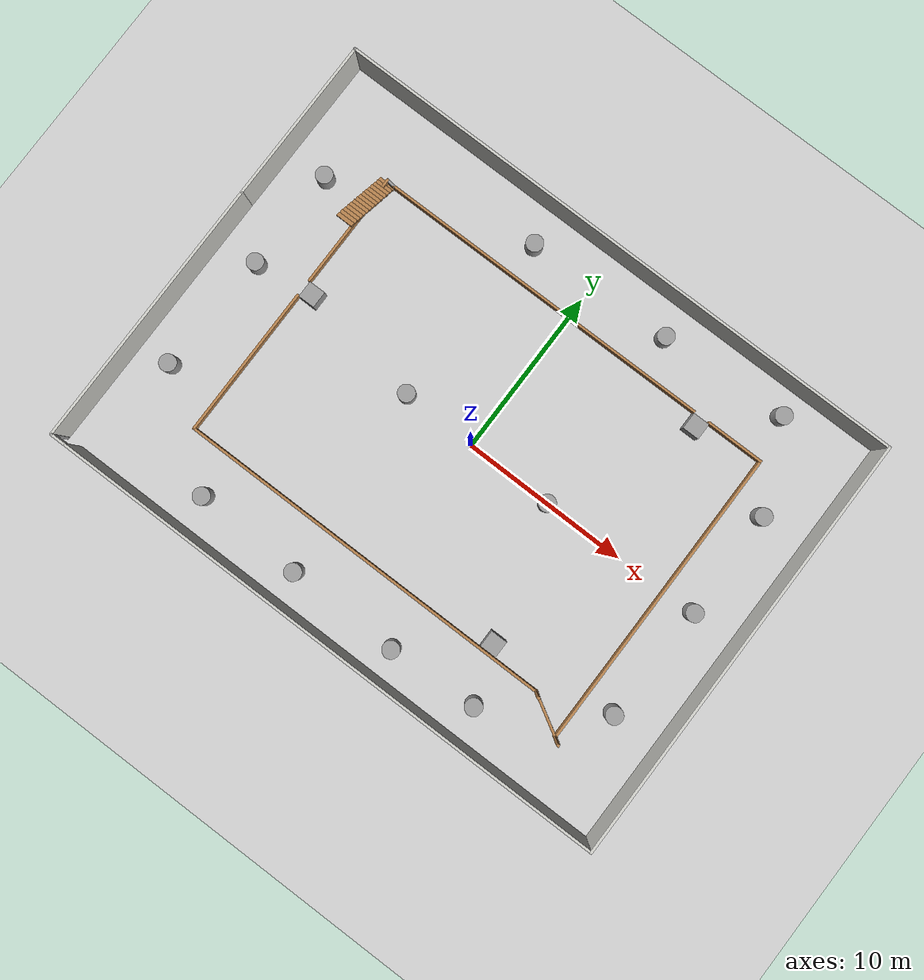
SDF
<sdf version="1.7">
 <world name="default">
  <light name="sun" type="directional">
   <pose>0 0 10 0 -0 0</pose>
   <diffuse>0.8 0.8 0.8 1</diffuse>
   <specular>0.2 0.2 0.2 1</specular>
   <attenuation>
    <range>1000</range>
    <constant>0.9</constant>
    <linear>0.01</linear>
    <quadratic>0.001</quadratic>
   </attenuation>
   <direction>-0.5 0.1 -0.9</direction>
   <spot><inner_angle>0</inner_angle><outer_angle>0</outer_angle><falloff>0</falloff></spot>
  </light>
  <model name="ground_plane">
   <static>1</static>
   <link name="link">
    <collision name="collision">
     <geometry><plane><normal>0 0 1</normal><size>100 100</size></plane></geometry>
     <surface><friction><ode><mu>100</mu><mu2>50</mu2></ode></friction></surface>
    </collision>
    <visual name="visual">
     <cast_shadows>0</cast_shadows>
     <geometry><plane><normal>0 0 1</normal><size>100 100</size></plane></geometry>
     <material>
      <script><uri>file://media/materials/scripts/gazebo.material</uri><name>Gazebo/Grey</name></script>
     </material>
    </visual>
   </link>
  </model>
  <gravity>0 0 -9.8</gravity>
  <magnetic_field>6e-06 2.3e-05 -4.2e-05</magnetic_field>
  <atmosphere type="adiabatic"/>
  <physics type="ode">
   <max_step_size>0.001</max_step_size>
   <real_time_factor>1</real_time_factor>
   <real_time_update_rate>1000</real_time_update_rate>
  </physics>
  <scene><ambient>0.4 0.4 0.4 1</ambient><background>0.7 0.7 0.7 1</background><shadows>1</shadows></scene>
  <spherical_coordinates>
   <surface_model>EARTH_WGS84</surface_model>
   <latitude_deg>0</latitude_deg>
   <longitude_deg>0</longitude_deg>
   <elevation>0</elevation>
   <heading_deg>0</heading_deg>
  </spherical_coordinates>
  <model name="w9">
   <pose>-0.090931 0.076638 0 0 -0 0</pose>
   <link name="Stairs_0">
    <visual name="Stairs_0_Visual_0">
     <pose>-12.3155 8.59462 0.083333 0 -0 0</pose>
     <geometry><box><size>1 0.233333 0.166667</size></box></geometry>
     <material>
      <script><uri>file://media/materials/scripts/gazebo.material</uri><name>Gazebo/Wood</name></script>
      <ambient>1 1 1 1</ambient>
     </material>
     <meta><layer>0</layer></meta>
    </visual>
    <collision name="Stairs_0_Collision_0">
     <geometry><box><size>1 0.233333 0.166667</size></box></geometry>
     <pose>-12.3155 8.59462 0.083333 0 -0 0</pose>
    </collision>
    <visual name="Stairs_0_Visual_1">
     <pose>-12.3155 8.36129 0.25 0 -0 0</pose>
     <geometry><box><size>1 0.233333 0.166667</size></box></geometry>
     <material>
      <script><uri>file://media/materials/scripts/gazebo.material</uri><name>Gazebo/Wood</name></script>
      <ambient>1 1 1 1</ambient>
     </material>
     <meta><layer>0</layer></meta>
    </visual>
    <collision name="Stairs_0_Collision_1">
     <geometry><box><size>1 0.233333 0.166667</size></box></geometry>
     <pose>-12.3155 8.36129 0.25 0 -0 0</pose>
    </collision>
    <visual name="Stairs_0_Visual_2">
     <pose>-12.3155 8.12796 0.416667 0 -0 0</pose>
     <geometry><box><size>1 0.233333 0.166667</size></box></geometry>
     <material>
      <script><uri>file://media/materials/scripts/gazebo.material</uri><name>Gazebo/Wood</name></script>
      <ambient>1 1 1 1</ambient>
     </material>
     <meta><layer>0</layer></meta>
    </visual>
    <collision name="Stairs_0_Collision_2">
     <geometry><box><size>1 0.233333 0.166667</size></box></geometry>
     <pose>-12.3155 8.12796 0.416667 0 -0 0</pose>
    </collision>
    <visual name="Stairs_0_Visual_3">
     <pose>-12.3155 7.89462 0.583333 0 -0 0</pose>
     <geometry><box><size>1 0.233333 0.166667</size></box></geometry>
     <material>
      <script><uri>file://media/materials/scripts/gazebo.material</uri><name>Gazebo/Wood</name></script>
      <ambient>1 1 1 1</ambient>
     </material>
     <meta><layer>0</layer></meta>
    </visual>
    <collision name="Stairs_0_Collision_3">
     <geometry><box><size>1 0.233333 0.166667</size></box></geometry>
     <pose>-12.3155 7.89462 0.583333 0 -0 0</pose>
    </collision>
    <visual name="Stairs_0_Visual_4">
     <pose>-12.3155 7.66129 0.75 0 -0 0</pose>
     <geometry><box><size>1 0.233333 0.166667</size></box></geometry>
     <material>
      <script><uri>file://media/materials/scripts/gazebo.material</uri><name>Gazebo/Wood</name></script>
      <ambient>1 1 1 1</ambient>
     </material>
     <meta><layer>0</layer></meta>
    </visual>
    <collision name="Stairs_0_Collision_4">
     <geometry><box><size>1 0.233333 0.166667</size></box></geometry>
     <pose>-12.3155 7.66129 0.75 0 -0 0</pose>
    </collision>
    <visual name="Stairs_0_Visual_5">
     <pose>-12.3155 7.42795 0.916667 0 -0 0</pose>
     <geometry><box><size>1 0.233333 0.166667</size></box></geometry>
     <material>
      <script><uri>file://media/materials/scripts/gazebo.material</uri><name>Gazebo/Wood</name></script>
      <ambient>1 1 1 1</ambient>
     </material>
     <meta><layer>0</layer></meta>
    </visual>
    <collision name="Stairs_0_Collision_5">
     <geometry><box><size>1 0.233333 0.166667</size></box></geometry>
     <pose>-12.3155 7.42795 0.916667 0 -0 0</pose>
    </collision>
    <visual name="Stairs_0_Visual_6">
     <pose>-12.3155 7.19462 1.08333 0 -0 0</pose>
     <geometry><box><size>1 0.233333 0.166667</size></box></geometry>
     <material>
      <script><uri>file://media/materials/scripts/gazebo.material</uri><name>Gazebo/Wood</name></script>
      <ambient>1 1 1 1</ambient>
     </material>
     <meta><layer>0</layer></meta>
    </visual>
    <collision name="Stairs_0_Collision_6">
     <geometry><box><size>1 0.233333 0.166667</size></box></geometry>
     <pose>-12.3155 7.19462 1.08333 0 -0 0</pose>
    </collision>
    <visual name="Stairs_0_Visual_7">
     <pose>-12.3155 6.96129 1.25 0 -0 0</pose>
     <geometry><box><size>1 0.233333 0.166667</size></box></geometry>
     <material>
      <script><uri>file://media/materials/scripts/gazebo.material</uri><name>Gazebo/Wood</name></script>
      <ambient>1 1 1 1</ambient>
     </material>
     <meta><layer>0</layer></meta>
    </visual>
    <collision name="Stairs_0_Collision_7">
     <geometry><box><size>1 0.233333 0.166667</size></box></geometry>
     <pose>-12.3155 6.96129 1.25 0 -0 0</pose>
    </collision>
    <visual name="Stairs_0_Visual_8">
     <pose>-12.3155 6.72795 1.41667 0 -0 0</pose>
     <geometry><box><size>1 0.233333 0.166667</size></box></geometry>
     <material>
      <script><uri>file://media/materials/scripts/gazebo.material</uri><name>Gazebo/Wood</name></script>
      <ambient>1 1 1 1</ambient>
     </material>
     <meta><layer>0</layer></meta>
    </visual>
    <collision name="Stairs_0_Collision_8">
     <geometry><box><size>1 0.233333 0.166667</size></box></geometry>
     <pose>-12.3155 6.72795 1.41667 0 -0 0</pose>
    </collision>
    <visual name="Stairs_0_Visual_9">
     <pose>-12.3155 6.49462 1.58333 0 -0 0</pose>
     <geometry><box><size>1 0.233333 0.166667</size></box></geometry>
     <material>
      <script><uri>file://media/materials/scripts/gazebo.material</uri><name>Gazebo/Wood</name></script>
      <ambient>1 1 1 1</ambient>
     </material>
     <meta><layer>0</layer></meta>
    </visual>
    <collision name="Stairs_0_Collision_9">
     <geometry><box><size>1 0.233333 0.166667</size></box></geometry>
     <pose>-12.3155 6.49462 1.58333 0 -0 0</pose>
    </collision>
    <visual name="Stairs_0_Visual_10">
     <pose>-12.3155 6.26129 1.75 0 -0 0</pose>
     <geometry><box><size>1 0.233333 0.166667</size></box></geometry>
     <material>
      <script><uri>file://media/materials/scripts/gazebo.material</uri><name>Gazebo/Wood</name></script>
      <ambient>1 1 1 1</ambient>
     </material>
     <meta><layer>0</layer></meta>
    </visual>
    <collision name="Stairs_0_Collision_10">
     <geometry><box><size>1 0.233333 0.166667</size></box></geometry>
     <pose>-12.3155 6.26129 1.75 0 -0 0</pose>
    </collision>
    <visual name="Stairs_0_Visual_11">
     <pose>-12.3155 6.02796 1.91667 0 -0 0</pose>
     <geometry><box><size>1 0.233333 0.166667</size></box></geometry>
     <material>
      <script><uri>file://media/materials/scripts/gazebo.material</uri><name>Gazebo/Wood</name></script>
      <ambient>1 1 1 1</ambient>
     </material>
     <meta><layer>0</layer></meta>
    </visual>
    <collision name="Stairs_0_Collision_11">
     <geometry><box><size>1 0.233333 0.166667</size></box></geometry>
     <pose>-12.3155 6.02796 1.91667 0 -0 0</pose>
    </collision>
    <visual name="Stairs_0_Visual_12">
     <pose>-12.3155 5.79462 2.08333 0 -0 0</pose>
     <geometry><box><size>1 0.233333 0.166667</size></box></geometry>
     <material>
      <script><uri>file://media/materials/scripts/gazebo.material</uri><name>Gazebo/Wood</name></script>
      <ambient>1 1 1 1</ambient>
     </material>
     <meta><layer>0</layer></meta>
    </visual>
    <collision name="Stairs_0_Collision_12">
     <geometry><box><size>1 0.233333 0.166667</size></box></geometry>
     <pose>-12.3155 5.79462 2.08333 0 -0 0</pose>
    </collision>
    <visual name="Stairs_0_Visual_13">
     <pose>-12.3155 5.56129 2.25 0 -0 0</pose>
     <geometry><box><size>1 0.233333 0.166667</size></box></geometry>
     <material>
      <script><uri>file://media/materials/scripts/gazebo.material</uri><name>Gazebo/Wood</name></script>
      <ambient>1 1 1 1</ambient>
     </material>
     <meta><layer>0</layer></meta>
    </visual>
    <collision name="Stairs_0_Collision_13">
     <geometry><box><size>1 0.233333 0.166667</size></box></geometry>
     <pose>-12.3155 5.56129 2.25 0 -0 0</pose>
    </collision>
    <visual name="Stairs_0_Visual_14">
     <pose>-12.3155 5.32796 2.41667 0 -0 0</pose>
     <geometry><box><size>1 0.233333 0.166667</size></box></geometry>
     <material>
      <script><uri>file://media/materials/scripts/gazebo.material</uri><name>Gazebo/Wood</name></script>
      <ambient>1 1 1 1</ambient>
     </material>
     <meta><layer>0</layer></meta>
    </visual>
    <collision name="Stairs_0_Collision_14">
     <geometry><box><size>1 0.233333 0.166667</size></box></geometry>
     <pose>-12.3155 5.32796 2.41667 0 -0 0</pose>
    </collision>
   </link>
   <link name="Wall_10">
    <pose>0.583152 8.68335 0 0 -0 0</pose>
    <visual name="Wall_10_Visual_0">
     <pose>-2.22989 0 0.25 0 -0 0</pose>
     <geometry><box><size>20.5402 0.15 0.5</size></box></geometry>
     <material>
      <script><uri>file://media/materials/scripts/gazebo.material</uri><name>Gazebo/Wood</name></script>
      <ambient>1 1 1 1</ambient>
     </material>
     <meta><layer>0</layer></meta>
    </visual>
    <collision name="Wall_10_Collision_0">
     <geometry><box><size>20.5402 0.15 0.5</size></box></geometry>
     <pose>-2.22989 0 0.25 0 -0 0</pose>
    </collision>
    <visual name="Wall_10_Visual_1">
     <pose>10.7201 0 0.25 0 -0 0</pose>
     <geometry><box><size>3.55979 0.15 0.5</size></box></geometry>
     <material>
      <script><uri>file://media/materials/scripts/gazebo.material</uri><name>Gazebo/Wood</name></script>
      <ambient>1 1 1 1</ambient>
     </material>
     <meta><layer>0</layer></meta>
    </visual>
    <collision name="Wall_10_Collision_1">
     <geometry><box><size>3.55979 0.15 0.5</size></box></geometry>
     <pose>10.7201 0 0.25 0 -0 0</pose>
    </collision>
   </link>
   <link name="Wall_11">
    <collision name="Wall_11_Collision">
     <geometry><box><size>18.5 0.15 0.5</size></box></geometry>
     <pose>0 0 0.25 0 -0 0</pose>
    </collision>
    <visual name="Wall_11_Visual">
     <pose>0 0 0.25 0 -0 0</pose>
     <geometry><box><size>18.5 0.15 0.5</size></box></geometry>
     <material>
      <script><uri>file://media/materials/scripts/gazebo.material</uri><name>Gazebo/Wood</name></script>
      <ambient>1 1 1 1</ambient>
     </material>
     <meta><layer>0</layer></meta>
    </visual>
    <pose>13.0082 -0.491654 0 0 -0 -1.5708</pose>
   </link>
   <link name="Wall_12">
    <collision name="Wall_12_Collision">
     <geometry><box><size>0.16 0.15 2.5</size></box></geometry>
     <pose>0 0 1.25 0 -0 0</pose>
    </collision>
    <visual name="Wall_12_Visual">
     <pose>0 0 1.25 0 -0 0</pose>
     <geometry><box><size>0.16 0.15 2.5</size></box></geometry>
     <material>
      <script><uri>file://media/materials/scripts/gazebo.material</uri><name>Gazebo/Wood</name></script>
      <ambient>1 1 1 1</ambient>
     </material>
     <meta><layer>0</layer></meta>
    </visual>
    <pose>13.0132 -9.66665 0 0 -0 0</pose>
   </link>
   <link name="Wall_13">
    <collision name="Wall_13_Collision">
     <geometry><box><size>2.75 0.15 0.5</size></box></geometry>
     <pose>0 0 0.25 0 -0 0</pose>
    </collision>
    <visual name="Wall_13_Visual">
     <pose>0 0 0.25 0 -0 0</pose>
     <geometry><box><size>2.75 0.15 0.5</size></box></geometry>
     <material>
      <script><uri>file://media/materials/scripts/gazebo.material</uri><name>Gazebo/Wood</name></script>
      <ambient>1 1 1 1</ambient>
     </material>
     <meta><layer>0</layer></meta>
    </visual>
    <pose>11.8927 -9.01665 0 0 -0 2.61787</pose>
   </link>
   <link name="Wall_14">
    <collision name="Wall_14_Collision">
     <geometry><box><size>0.16 0.15 2.5</size></box></geometry>
     <pose>0 0 1.25 0 -0 0</pose>
    </collision>
    <visual name="Wall_14_Visual">
     <pose>0 0 1.25 0 -0 0</pose>
     <geometry><box><size>0.16 0.15 2.5</size></box></geometry>
     <material>
      <script><uri>file://media/materials/scripts/gazebo.material</uri><name>Gazebo/Wood</name></script>
      <ambient>1 1 1 1</ambient>
     </material>
     <meta><layer>0</layer></meta>
    </visual>
    <pose>10.7722 -8.36665 0 0 -0 0</pose>
   </link>
   <link name="Wall_15">
    <collision name="Wall_15_Collision">
     <geometry><box><size>23.25 0.15 0.5</size></box></geometry>
     <pose>0 0 0.25 0 -0 0</pose>
    </collision>
    <visual name="Wall_15_Visual">
     <pose>0 0 0.25 0 -0 0</pose>
     <geometry><box><size>23.25 0.15 0.5</size></box></geometry>
     <material>
      <script><uri>file://media/materials/scripts/gazebo.material</uri><name>Gazebo/Wood</name></script>
      <ambient>1 1 1 1</ambient>
     </material>
     <meta><layer>0</layer></meta>
    </visual>
    <pose>-0.772848 -8.36665 0 0 -0 3.14159</pose>
   </link>
   <link name="Wall_16">
    <pose>-12.3228 0.183346 0 0 -0 1.5708</pose>
    <visual name="Wall_16_Visual_0">
     <pose>-3.99873 0 0.25 0 -0 0</pose>
     <geometry><box><size>9.25253 0.15 0.5</size></box></geometry>
     <material>
      <script><uri>file://media/materials/scripts/gazebo.material</uri><name>Gazebo/Wood</name></script>
      <ambient>1 1 1 1</ambient>
     </material>
     <meta><layer>0</layer></meta>
    </visual>
    <collision name="Wall_16_Collision_0">
     <geometry><box><size>9.25253 0.15 0.5</size></box></geometry>
     <pose>-3.99873 0 0.25 0 -0 0</pose>
    </collision>
    <visual name="Wall_16_Visual_1">
     <pose>5.07627 0 0.25 0 -0 0</pose>
     <geometry><box><size>7.09747 0.15 0.5</size></box></geometry>
     <material>
      <script><uri>file://media/materials/scripts/gazebo.material</uri><name>Gazebo/Wood</name></script>
      <ambient>1 1 1 1</ambient>
     </material>
     <meta><layer>0</layer></meta>
    </visual>
    <collision name="Wall_16_Collision_1">
     <geometry><box><size>7.09747 0.15 0.5</size></box></geometry>
     <pose>5.07627 0 0.25 0 -0 0</pose>
    </collision>
   </link>
   <link name="Wall_17">
    <collision name="Wall_17_Collision">
     <geometry><box><size>0.634254 0.15 0.5</size></box></geometry>
     <pose>0 0 0.25 0 -0 0</pose>
    </collision>
    <visual name="Wall_17_Visual">
     <pose>0 0 0.25 0 -0 0</pose>
     <geometry><box><size>0.634254 0.15 0.5</size></box></geometry>
     <material>
      <script><uri>file://media/materials/scripts/gazebo.material</uri><name>Gazebo/Grey</name></script>
      <ambient>1 1 1 1</ambient>
     </material>
     <meta><layer>0</layer></meta>
    </visual>
    <pose>-12.0823 8.70835 0 0 -0 -0.103578</pose>
   </link>
   <link name="Wall_2">
    <collision name="Wall_2_Collision">
     <geometry><box><size>16.25 0.15 2.5</size></box></geometry>
     <pose>0 0 1.25 0 -0 0</pose>
    </collision>
    <visual name="Wall_2_Visual">
     <pose>0 0 1.25 0 -0 0</pose>
     <geometry><box><size>16.25 0.15 2.5</size></box></geometry>
     <material>
      <script><uri>file://media/materials/scripts/gazebo.material</uri><name>Gazebo/CeilingTiled</name></script>
      <ambient>0.0705882 0.937255 0.886275 1</ambient>
     </material>
     <meta><layer>0</layer></meta>
    </visual>
    <pose>-17.5549 -4.87508 0 0 -0 -1.5708</pose>
   </link>
   <link name="Wall_3">
    <collision name="Wall_3_Collision">
     <geometry><box><size>0.16 0.15 2.5</size></box></geometry>
     <pose>0 0 1.25 0 -0 0</pose>
    </collision>
    <visual name="Wall_3_Visual">
     <pose>0 0 1.25 0 -0 0</pose>
     <geometry><box><size>0.16 0.15 2.5</size></box></geometry>
     <material>
      <script><uri>file://media/materials/scripts/gazebo.material</uri><name>Gazebo/Grey</name></script>
      <ambient>1 1 1 1</ambient>
     </material>
     <meta><layer>0</layer></meta>
    </visual>
    <pose>-17.5499 -12.9251 0 0 -0 0</pose>
   </link>
   <link name="Wall_4">
    <pose>0.005076 -12.9251 0 0 -0 0</pose>
    <visual name="Wall_4_Visual_0">
     <pose>-17.6035 0 1.25 0 -0 0</pose>
     <geometry><box><size>0.043019 0.15 2.5</size></box></geometry>
     <material>
      <script><uri>file://media/materials/scripts/gazebo.material</uri><name>Gazebo/CeilingTiled</name></script>
      <ambient>0.0705882 0.937255 0.886275 1</ambient>
     </material>
     <meta><layer>0</layer></meta>
    </visual>
    <collision name="Wall_4_Collision_0">
     <geometry><box><size>0.043019 0.15 2.5</size></box></geometry>
     <pose>-17.6035 0 1.25 0 -0 0</pose>
    </collision>
    <visual name="Wall_4_Visual_1">
     <pose>0.47151 0 1.25 0 -0 0</pose>
     <geometry><box><size>34.307 0.15 2.5</size></box></geometry>
     <material>
      <script><uri>file://media/materials/scripts/gazebo.material</uri><name>Gazebo/CeilingTiled</name></script>
      <ambient>0.0705882 0.937255 0.886275 1</ambient>
     </material>
     <meta><layer>0</layer></meta>
    </visual>
    <collision name="Wall_4_Collision_1">
     <geometry><box><size>34.307 0.15 2.5</size></box></geometry>
     <pose>0.47151 0 1.25 0 -0 0</pose>
    </collision>
    <visual name="Wall_4_Visual_2">
     <pose>-17.132 0 2.25 0 -0 0</pose>
     <geometry><box><size>0.9 0.15 0.5</size></box></geometry>
     <material>
      <script><uri>file://media/materials/scripts/gazebo.material</uri><name>Gazebo/CeilingTiled</name></script>
      <ambient>0.0705882 0.937255 0.886275 1</ambient>
     </material>
     <meta><layer>0</layer></meta>
    </visual>
    <collision name="Wall_4_Collision_2">
     <geometry><box><size>0.9 0.15 0.5</size></box></geometry>
     <pose>-17.132 0 2.25 0 -0 0</pose>
    </collision>
   </link>
   <link name="Wall_5">
    <collision name="Wall_5_Collision">
     <geometry><box><size>26 0.15 2.5</size></box></geometry>
     <pose>0 0 1.25 0 -0 0</pose>
    </collision>
    <visual name="Wall_5_Visual">
     <pose>0 0 1.25 0 -0 0</pose>
     <geometry><box><size>26 0.15 2.5</size></box></geometry>
     <material>
      <script><uri>file://media/materials/scripts/gazebo.material</uri><name>Gazebo/CeilingTiled</name></script>
      <ambient>0.0705882 0.937255 0.886275 1</ambient>
     </material>
     <meta><layer>0</layer></meta>
    </visual>
    <pose>17.5551 -7.6e-05 0 0 -0 1.5708</pose>
   </link>
   <link name="Wall_6">
    <collision name="Wall_6_Collision">
     <geometry><box><size>35.25 0.15 2.5</size></box></geometry>
     <pose>0 0 1.25 0 -0 0</pose>
    </collision>
    <visual name="Wall_6_Visual">
     <pose>0 0 1.25 0 -0 0</pose>
     <geometry><box><size>35.25 0.15 2.5</size></box></geometry>
     <material>
      <script><uri>file://media/materials/scripts/gazebo.material</uri><name>Gazebo/CeilingTiled</name></script>
      <ambient>0.0705882 0.937255 0.886275 1</ambient>
     </material>
     <meta><layer>0</layer></meta>
    </visual>
    <pose>0.005076 12.9249 0 0 -0 3.14159</pose>
   </link>
   <link name="Wall_7">
    <collision name="Wall_7_Collision">
     <geometry><box><size>0.16 0.15 2.5</size></box></geometry>
     <pose>0 0 1.25 0 -0 0</pose>
    </collision>
    <visual name="Wall_7_Visual">
     <pose>0 0 1.25 0 -0 0</pose>
     <geometry><box><size>0.16 0.15 2.5</size></box></geometry>
     <material>
      <script><uri>file://media/materials/scripts/gazebo.material</uri><name>Gazebo/Grey</name></script>
      <ambient>1 1 1 1</ambient>
     </material>
     <meta><layer>0</layer></meta>
    </visual>
    <pose>-17.5399 12.9249 0 0 -0 0</pose>
   </link>
   <link name="Wall_8">
    <collision name="Wall_8_Collision">
     <geometry><box><size>9.90002 0.15 2.5</size></box></geometry>
     <pose>0 0 1.25 0 -0 0</pose>
    </collision>
    <visual name="Wall_8_Visual">
     <pose>0 0 1.25 0 -0 0</pose>
     <geometry><box><size>9.90002 0.15 2.5</size></box></geometry>
     <material>
      <script><uri>file://media/materials/scripts/gazebo.material</uri><name>Gazebo/CeilingTiled</name></script>
      <ambient>0.0705882 0.937255 0.886275 1</ambient>
     </material>
     <meta><layer>0</layer></meta>
    </visual>
    <pose>-17.5449 8.04992 0 0 -0 -1.57285</pose>
   </link>
   <static>1</static>
  </model>
  <model name="unit_box">
   <pose>-11.7153 1.27788 0.499995 0 1e-05 0</pose>
   <link name="link">
    <inertial>
     <mass>1</mass>
     <inertia>
      <ixx>0.166667</ixx>
      <ixy>0</ixy>
      <ixz>0</ixz>
      <iyy>0.166667</iyy>
      <iyz>0</iyz>
      <izz>0.166667</izz>
     </inertia>
    </inertial>
    <collision name="collision"><geometry><box><size>1 1 1</size></box></geometry></collision>
    <visual name="visual">
     <geometry><box><size>1 1 1</size></box></geometry>
     <material>
      <script><name>Gazebo/Grey</name><uri>file://media/materials/scripts/gazebo.material</uri></script>
     </material>
    </visual>
   </link>
  </model>
  <model name="unit_box_0">
   <pose>8.97345 8.09244 0.499995 0 1e-05 0</pose>
   <link name="link">
    <inertial>
     <mass>1</mass>
     <inertia>
      <ixx>0.166667</ixx>
      <ixy>0</ixy>
      <ixz>0</ixz>
      <iyy>0.166667</iyy>
      <iyz>0</iyz>
      <izz>0.166667</izz>
     </inertia>
    </inertial>
    <collision name="collision"><geometry><box><size>1 1 1</size></box></geometry></collision>
    <visual name="visual">
     <geometry><box><size>1 1 1</size></box></geometry>
     <material>
      <script><name>Gazebo/Grey</name><uri>file://media/materials/scripts/gazebo.material</uri></script>
     </material>
    </visual>
   </link>
  </model>
  <model name="unit_box_1">
   <pose>7.33024 -7.6295 0.499995 1e-05 -0 0</pose>
   <link name="link">
    <inertial>
     <mass>1</mass>
     <inertia>
      <ixx>0.166667</ixx>
      <ixy>0</ixy>
      <ixz>0</ixz>
      <iyy>0.166667</iyy>
      <iyz>0</iyz>
      <izz>0.166667</izz>
     </inertia>
    </inertial>
    <collision name="collision"><geometry><box><size>1 1 1</size></box></geometry></collision>
    <visual name="visual">
     <geometry><box><size>1 1 1</size></box></geometry>
     <material>
      <script><name>Gazebo/Grey</name><uri>file://media/materials/scripts/gazebo.material</uri></script>
     </material>
    </visual>
   </link>
  </model>
  <model name="unit_cylinder">
   <pose>12.3716 11.3898 0.499992 -3e-06 2e-06 0</pose>
   <link name="link">
    <inertial>
     <mass>1</mass>
     <inertia><ixx>0.145833</ixx><ixy>0</ixy><ixz>0</ixz><iyy>0.145833</iyy><iyz>0</iyz><izz>0.125</izz></inertia>
    </inertial>
    <collision name="collision">
     <geometry><cylinder><radius>0.5</radius><length>1</length></cylinder></geometry>
    </collision>
    <visual name="visual">
     <geometry><cylinder><radius>0.5</radius><length>1</length></cylinder></geometry>
     <material>
      <script><name>Gazebo/Grey</name><uri>file://media/materials/scripts/gazebo.material</uri></script>
     </material>
    </visual>
   </link>
  </model>
  <model name="unit_cylinder_0">
   <pose>4.80964 11.0079 0.499998 3e-06 -2e-06 0</pose>
   <link name="link">
    <inertial>
     <mass>1</mass>
     <inertia><ixx>0.145833</ixx><ixy>0</ixy><ixz>0</ixz><iyy>0.145833</iyy><iyz>0</iyz><izz>0.125</izz></inertia>
    </inertial>
    <collision name="collision">
     <geometry><cylinder><radius>0.5</radius><length>1</length></cylinder></geometry>
    </collision>
    <visual name="visual">
     <geometry><cylinder><radius>0.5</radius><length>1</length></cylinder></geometry>
     <material>
      <script><name>Gazebo/Grey</name><uri>file://media/materials/scripts/gazebo.material</uri></script>
     </material>
    </visual>
   </link>
  </model>
  <model name="unit_cylinder_1">
   <pose>-3.85974 10.7788 0.499992 -3e-06 2e-06 0</pose>
   <link name="link">
    <inertial>
     <mass>1</mass>
     <inertia><ixx>0.145833</ixx><ixy>0</ixy><ixz>0</ixz><iyy>0.145833</iyy><iyz>0</iyz><izz>0.125</izz></inertia>
    </inertial>
    <collision name="collision">
     <geometry><cylinder><radius>0.5</radius><length>1</length></cylinder></geometry>
    </collision>
    <visual name="visual">
     <geometry><cylinder><radius>0.5</radius><length>1</length></cylinder></geometry>
     <material>
      <script><name>Gazebo/Grey</name><uri>file://media/materials/scripts/gazebo.material</uri></script>
     </material>
    </visual>
   </link>
  </model>
  <model name="unit_cylinder_2">
   <pose>14.7012 6.38681 0.499998 3e-06 -2e-06 0</pose>
   <link name="link">
    <inertial>
     <mass>1</mass>
     <inertia><ixx>0.145833</ixx><ixy>0</ixy><ixz>0</ixz><iyy>0.145833</iyy><iyz>0</iyz><izz>0.125</izz></inertia>
    </inertial>
    <collision name="collision">
     <geometry><cylinder><radius>0.5</radius><length>1</length></cylinder></geometry>
    </collision>
    <visual name="visual">
     <geometry><cylinder><radius>0.5</radius><length>1</length></cylinder></geometry>
     <material>
      <script><name>Gazebo/Grey</name><uri>file://media/materials/scripts/gazebo.material</uri></script>
     </material>
    </visual>
   </link>
  </model>
  <model name="unit_cylinder_3">
   <pose>14.8158 0.085205 0.499993 -3e-06 2e-06 0</pose>
   <link name="link">
    <inertial>
     <mass>1</mass>
     <inertia><ixx>0.145833</ixx><ixy>0</ixy><ixz>0</ixz><iyy>0.145833</iyy><iyz>0</iyz><izz>0.125</izz></inertia>
    </inertial>
    <collision name="collision">
     <geometry><cylinder><radius>0.5</radius><length>1</length></cylinder></geometry>
    </collision>
    <visual name="visual">
     <geometry><cylinder><radius>0.5</radius><length>1</length></cylinder></geometry>
     <material>
      <script><name>Gazebo/Grey</name><uri>file://media/materials/scripts/gazebo.material</uri></script>
     </material>
    </visual>
   </link>
  </model>
  <model name="unit_cylinder_4">
   <pose>14.6248 -6.751 0.499998 3e-06 -2e-06 0</pose>
   <link name="link">
    <inertial>
     <mass>1</mass>
     <inertia><ixx>0.145833</ixx><ixy>0</ixy><ixz>0</ixz><iyy>0.145833</iyy><iyz>0</iyz><izz>0.125</izz></inertia>
    </inertial>
    <collision name="collision">
     <geometry><cylinder><radius>0.5</radius><length>1</length></cylinder></geometry>
    </collision>
    <visual name="visual">
     <geometry><cylinder><radius>0.5</radius><length>1</length></cylinder></geometry>
     <material>
      <script><name>Gazebo/Grey</name><uri>file://media/materials/scripts/gazebo.material</uri></script>
     </material>
    </visual>
   </link>
  </model>
  <model name="unit_cylinder_5">
   <pose>8.47598 -10.8756 0.499993 -3e-06 2e-06 0</pose>
   <link name="link">
    <inertial>
     <mass>1</mass>
     <inertia><ixx>0.145833</ixx><ixy>0</ixy><ixz>0</ixz><iyy>0.145833</iyy><iyz>0</iyz><izz>0.125</izz></inertia>
    </inertial>
    <collision name="collision">
     <geometry><cylinder><radius>0.5</radius><length>1</length></cylinder></geometry>
    </collision>
    <visual name="visual">
     <geometry><cylinder><radius>0.5</radius><length>1</length></cylinder></geometry>
     <material>
      <script><name>Gazebo/Grey</name><uri>file://media/materials/scripts/gazebo.material</uri></script>
     </material>
    </visual>
   </link>
  </model>
  <model name="unit_cylinder_6">
   <pose>3.20565 -11.143 0.499998 3e-06 -2e-06 0</pose>
   <link name="link">
    <inertial>
     <mass>1</mass>
     <inertia><ixx>0.145833</ixx><ixy>0</ixy><ixz>0</ixz><iyy>0.145833</iyy><iyz>0</iyz><izz>0.125</izz></inertia>
    </inertial>
    <collision name="collision">
     <geometry><cylinder><radius>0.5</radius><length>1</length></cylinder></geometry>
    </collision>
    <visual name="visual">
     <geometry><cylinder><radius>0.5</radius><length>1</length></cylinder></geometry>
     <material>
      <script><name>Gazebo/Grey</name><uri>file://media/materials/scripts/gazebo.material</uri></script>
     </material>
    </visual>
   </link>
  </model>
  <model name="unit_cylinder_7">
   <pose>-3.40149 -11.0667 0.499993 -3e-06 3e-06 0</pose>
   <link name="link">
    <inertial>
     <mass>1</mass>
     <inertia><ixx>0.145833</ixx><ixy>0</ixy><ixz>0</ixz><iyy>0.145833</iyy><iyz>0</iyz><izz>0.125</izz></inertia>
    </inertial>
    <collision name="collision">
     <geometry><cylinder><radius>0.5</radius><length>1</length></cylinder></geometry>
    </collision>
    <visual name="visual">
     <geometry><cylinder><radius>0.5</radius><length>1</length></cylinder></geometry>
     <material>
      <script><name>Gazebo/Grey</name><uri>file://media/materials/scripts/gazebo.material</uri></script>
     </material>
    </visual>
   </link>
  </model>
  <model name="unit_cylinder_8">
   <pose>-9.74127 -10.8375 0.499998 3e-06 -3e-06 0</pose>
   <link name="link">
    <inertial>
     <mass>1</mass>
     <inertia><ixx>0.145833</ixx><ixy>0</ixy><ixz>0</ixz><iyy>0.145833</iyy><iyz>0</iyz><izz>0.125</izz></inertia>
    </inertial>
    <collision name="collision">
     <geometry><cylinder><radius>0.5</radius><length>1</length></cylinder></geometry>
    </collision>
    <visual name="visual">
     <geometry><cylinder><radius>0.5</radius><length>1</length></cylinder></geometry>
     <material>
      <script><name>Gazebo/Grey</name><uri>file://media/materials/scripts/gazebo.material</uri></script>
     </material>
    </visual>
   </link>
  </model>
  <model name="unit_cylinder_9">
   <pose>-15.1981 6.85919 0.499992 -3e-06 3e-06 0</pose>
   <link name="link">
    <inertial>
     <mass>1</mass>
     <inertia><ixx>0.145833</ixx><ixy>0</ixy><ixz>0</ixz><iyy>0.145833</iyy><iyz>0</iyz><izz>0.125</izz></inertia>
    </inertial>
    <collision name="collision">
     <geometry><cylinder><radius>0.5</radius><length>1</length></cylinder></geometry>
    </collision>
    <visual name="visual">
     <geometry><cylinder><radius>0.5</radius><length>1</length></cylinder></geometry>
     <material>
      <script><name>Gazebo/Grey</name><uri>file://media/materials/scripts/gazebo.material</uri></script>
     </material>
    </visual>
   </link>
  </model>
  <model name="unit_cylinder_10">
   <pose>-15.2472 0.836735 0.499998 3e-06 -3e-06 0</pose>
   <link name="link">
    <inertial>
     <mass>1</mass>
     <inertia><ixx>0.145833</ixx><ixy>0</ixy><ixz>0</ixz><iyy>0.145833</iyy><iyz>0</iyz><izz>0.125</izz></inertia>
    </inertial>
    <collision name="collision">
     <geometry><cylinder><radius>0.5</radius><length>1</length></cylinder></geometry>
    </collision>
    <visual name="visual">
     <geometry><cylinder><radius>0.5</radius><length>1</length></cylinder></geometry>
     <material>
      <script><name>Gazebo/Grey</name><uri>file://media/materials/scripts/gazebo.material</uri></script>
     </material>
    </visual>
   </link>
  </model>
  <model name="unit_cylinder_11">
   <pose>-15.5915 -6.32111 0.499992 -3e-06 3e-06 0</pose>
   <link name="link">
    <inertial>
     <mass>1</mass>
     <inertia><ixx>0.145833</ixx><ixy>0</ixy><ixz>0</ixz><iyy>0.145833</iyy><iyz>0</iyz><izz>0.125</izz></inertia>
    </inertial>
    <collision name="collision">
     <geometry><cylinder><radius>0.5</radius><length>1</length></cylinder></geometry>
    </collision>
    <visual name="visual">
     <geometry><cylinder><radius>0.5</radius><length>1</length></cylinder></geometry>
     <material>
      <script><name>Gazebo/Grey</name><uri>file://media/materials/scripts/gazebo.material</uri></script>
     </material>
    </visual>
   </link>
  </model>
  <model name="unit_cylinder_12">
   <pose>5.12283 0.004914 0.499993 -3e-06 -4e-06 -0</pose>
   <link name="link">
    <inertial>
     <mass>1</mass>
     <inertia><ixx>0.145833</ixx><ixy>0</ixy><ixz>0</ixz><iyy>0.145833</iyy><iyz>0</iyz><izz>0.125</izz></inertia>
    </inertial>
    <collision name="collision">
     <geometry><cylinder><radius>0.5</radius><length>1</length></cylinder></geometry>
    </collision>
    <visual name="visual">
     <geometry><cylinder><radius>0.5</radius><length>1</length></cylinder></geometry>
     <material>
      <script><name>Gazebo/Grey</name><uri>file://media/materials/scripts/gazebo.material</uri></script>
     </material>
    </visual>
   </link>
  </model>
  <model name="unit_cylinder_13">
   <pose>-4.41122 0.121738 0.499997 3e-06 4e-06 -0</pose>
   <link name="link">
    <inertial>
     <mass>1</mass>
     <inertia><ixx>0.145833</ixx><ixy>0</ixy><ixz>0</ixz><iyy>0.145833</iyy><iyz>0</iyz><izz>0.125</izz></inertia>
    </inertial>
    <collision name="collision">
     <geometry><cylinder><radius>0.5</radius><length>1</length></cylinder></geometry>
    </collision>
    <visual name="visual">
     <geometry><cylinder><radius>0.5</radius><length>1</length></cylinder></geometry>
     <material>
      <script><name>Gazebo/Grey</name><uri>file://media/materials/scripts/gazebo.material</uri></script>
     </material>
    </visual>
   </link>
  </model>
 </world>
</sdf>
